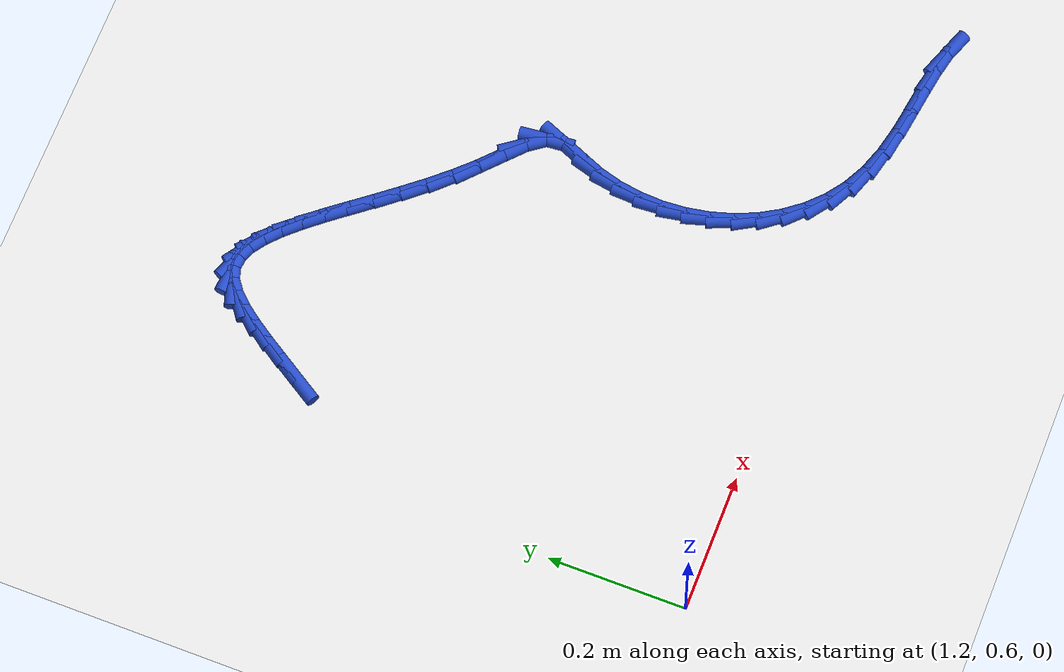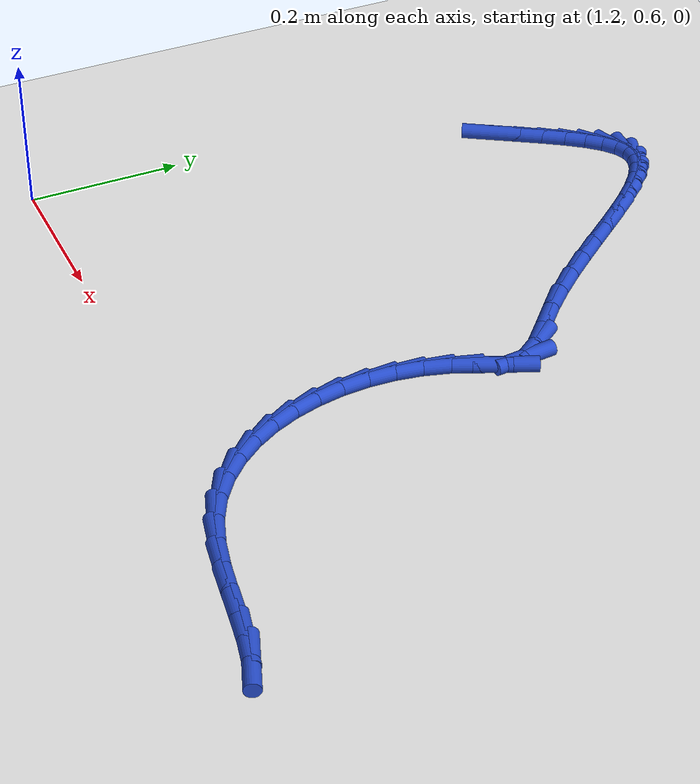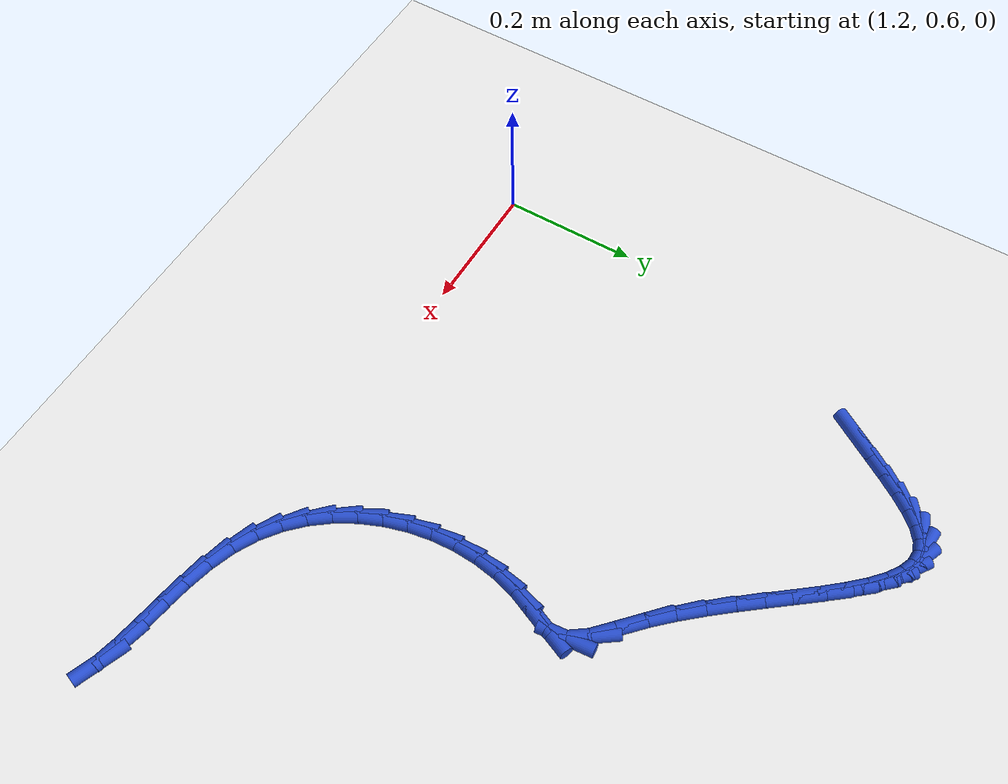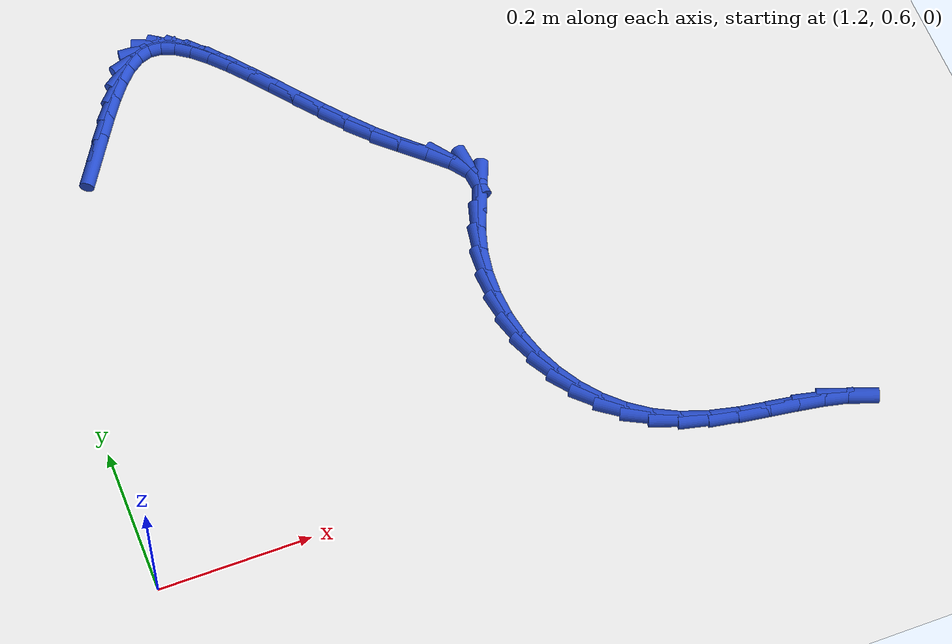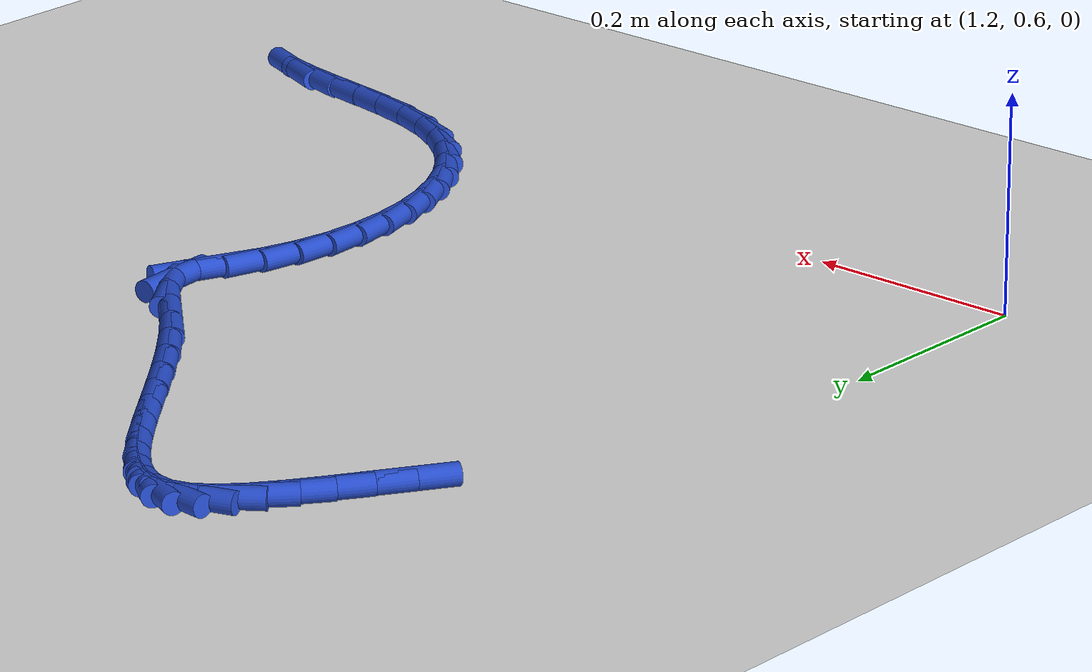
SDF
<sdf version="1.6">
 <world name="default">
  <model name="ground_plane">
   <static>1</static>
   <link name="link">
    <collision name="collision">
     <geometry><plane><normal>0 0 1</normal><size>100 100</size></plane></geometry>
     <surface><friction><ode><mu>100</mu><mu2>50</mu2></ode></friction></surface>
    </collision>
    <visual name="visual">
     <cast_shadows>0</cast_shadows>
     <geometry><plane><normal>0 0 1</normal><size>100 100</size></plane></geometry>
     <material>
      <script><uri>file://media/materials/scripts/gazebo.material</uri><name>Gazebo/WhiteGlow</name></script>
     </material>
    </visual>
   </link>
  </model>
  <model name="line">
   <link name="link_61">
    <pose>1.3156228348762282 1.217150952745425 0.01 0 1.57 1.0138825208584834</pose>
    <collision name="collision">
     <geometry><cylinder><radius>0.01</radius><length>0.08</length></cylinder></geometry>
    </collision>
    <visual name="visual">
     <material>
      <script><name>Gazebo/Blue</name><uri>file://media/materials/scripts/gazebo.material</uri></script>
     </material>
     <geometry><cylinder><radius>0.01</radius><length>0.08</length></cylinder></geometry>
    </visual>
   </link>
   <link name="link_62">
    <pose>1.3344318587654038 1.2473585581870004 0.01 0 1.57 1.0110584787990842</pose>
    <collision name="collision">
     <geometry><cylinder><radius>0.01</radius><length>0.08</length></cylinder></geometry>
    </collision>
    <visual name="visual">
     <material>
      <script><name>Gazebo/Blue</name><uri>file://media/materials/scripts/gazebo.material</uri></script>
     </material>
     <geometry><cylinder><radius>0.01</radius><length>0.08</length></cylinder></geometry>
    </visual>
   </link>
   <link name="link_63">
    <pose>1.3524198806023695 1.2760666170446617 0.01 0 1.57 0.9844993900886725</pose>
    <collision name="collision">
     <geometry><cylinder><radius>0.01</radius><length>0.08</length></cylinder></geometry>
    </collision>
    <visual name="visual">
     <material>
      <script><name>Gazebo/Blue</name><uri>file://media/materials/scripts/gazebo.material</uri></script>
     </material>
     <geometry><cylinder><radius>0.01</radius><length>0.08</length></cylinder></geometry>
    </visual>
   </link>
   <link name="link_64">
    <pose>1.3698177956399276 1.3022601809817511 0.01 0 1.57 0.9261493558185699</pose>
    <collision name="collision">
     <geometry><cylinder><radius>0.01</radius><length>0.08</length></cylinder></geometry>
    </collision>
    <visual name="visual">
     <material>
      <script><name>Gazebo/Blue</name><uri>file://media/materials/scripts/gazebo.material</uri></script>
     </material>
     <geometry><cylinder><radius>0.01</radius><length>0.08</length></cylinder></geometry>
    </visual>
   </link>
   <link name="link_65">
    <pose>1.3868564991308805 1.3249243016616115 0.01 0 1.57 0.8199073776465102</pose>
    <collision name="collision">
     <geometry><cylinder><radius>0.01</radius><length>0.08</length></cylinder></geometry>
    </collision>
    <visual name="visual">
     <material>
      <script><name>Gazebo/Blue</name><uri>file://media/materials/scripts/gazebo.material</uri></script>
     </material>
     <geometry><cylinder><radius>0.01</radius><length>0.08</length></cylinder></geometry>
    </visual>
   </link>
   <link name="link_66">
    <pose>1.4037668863280315 1.3430440307475857 0.01 0 1.57 0.635960166127817</pose>
    <collision name="collision">
     <geometry><cylinder><radius>0.01</radius><length>0.08</length></cylinder></geometry>
    </collision>
    <visual name="visual">
     <material>
      <script><name>Gazebo/Blue</name><uri>file://media/materials/scripts/gazebo.material</uri></script>
     </material>
     <geometry><cylinder><radius>0.01</radius><length>0.08</length></cylinder></geometry>
    </visual>
   </link>
   <link name="link_67">
    <pose>1.4207798524841826 1.355604419903016 0.01 0 1.57 0.3324213625353398</pose>
    <collision name="collision">
     <geometry><cylinder><radius>0.01</radius><length>0.08</length></cylinder></geometry>
    </collision>
    <visual name="visual">
     <material>
      <script><name>Gazebo/Blue</name><uri>file://media/materials/scripts/gazebo.material</uri></script>
     </material>
     <geometry><cylinder><radius>0.01</radius><length>0.08</length></cylinder></geometry>
    </visual>
   </link>
   <link name="link_68">
    <pose>1.4381260610375546 1.3615928959448065 0.01 0 1.57 -0.06072433947442068</pose>
    <collision name="collision">
     <geometry><cylinder><radius>0.01</radius><length>0.08</length></cylinder></geometry>
    </collision>
    <visual name="visual">
     <material>
      <script><name>Gazebo/Blue</name><uri>file://media/materials/scripts/gazebo.material</uri></script>
     </material>
     <geometry><cylinder><radius>0.01</radius><length>0.08</length></cylinder></geometry>
    </visual>
   </link>
   <link name="link_69">
    <pose>1.4559863879331725 1.3605070043410419 0.01 0 1.57 -0.38720722051322115</pose>
    <collision name="collision">
     <geometry><cylinder><radius>0.01</radius><length>0.08</length></cylinder></geometry>
    </collision>
    <visual name="visual">
     <material>
      <script><name>Gazebo/Blue</name><uri>file://media/materials/scripts/gazebo.material</uri></script>
     </material>
     <geometry><cylinder><radius>0.01</radius><length>0.08</length></cylinder></geometry>
    </visual>
   </link>
   <link name="link_70">
    <pose>1.4744303092977136 1.3529856841393764 0.01 0 1.57 -0.6038543244801239</pose>
    <collision name="collision">
     <geometry><cylinder><radius>0.01</radius><length>0.08</length></cylinder></geometry>
    </collision>
    <visual name="visual">
     <material>
      <script><name>Gazebo/Blue</name><uri>file://media/materials/scripts/gazebo.material</uri></script>
     </material>
     <geometry><cylinder><radius>0.01</radius><length>0.08</length></cylinder></geometry>
    </visual>
   </link>
   <link name="link_71">
    <pose>1.4935121788266774 1.3398228176011047 0.01 0 1.57 -0.738755962562868</pose>
    <collision name="collision">
     <geometry><cylinder><radius>0.01</radius><length>0.08</length></cylinder></geometry>
    </collision>
    <visual name="visual">
     <material>
      <script><name>Gazebo/Blue</name><uri>file://media/materials/scripts/gazebo.material</uri></script>
     </material>
     <geometry><cylinder><radius>0.01</radius><length>0.08</length></cylinder></geometry>
    </visual>
   </link>
   <link name="link_72">
    <pose>1.5132863502155636 1.3218122869875213 0.01 0 1.57 -0.8216270018435968</pose>
    <collision name="collision">
     <geometry><cylinder><radius>0.01</radius><length>0.08</length></cylinder></geometry>
    </collision>
    <visual name="visual">
     <material>
      <script><name>Gazebo/Blue</name><uri>file://media/materials/scripts/gazebo.material</uri></script>
     </material>
     <geometry><cylinder><radius>0.01</radius><length>0.08</length></cylinder></geometry>
    </visual>
   </link>
   <link name="link_73">
    <pose>1.5338071771598727 1.299747974559921 0.01 0 1.57 -0.8709916282372475</pose>
    <collision name="collision">
     <geometry><cylinder><radius>0.01</radius><length>0.08</length></cylinder></geometry>
    </collision>
    <visual name="visual">
     <material>
      <script><name>Gazebo/Blue</name><uri>file://media/materials/scripts/gazebo.material</uri></script>
     </material>
     <geometry><cylinder><radius>0.01</radius><length>0.08</length></cylinder></geometry>
    </visual>
   </link>
   <link name="link_74">
    <pose>1.555129013355104 1.2744237625795982 0.01 0 1.57 -0.8972629806093912</pose>
    <collision name="collision">
     <geometry><cylinder><radius>0.01</radius><length>0.08</length></cylinder></geometry>
    </collision>
    <visual name="visual">
     <material>
      <script><name>Gazebo/Blue</name><uri>file://media/materials/scripts/gazebo.material</uri></script>
     </material>
     <geometry><cylinder><radius>0.01</radius><length>0.08</length></cylinder></geometry>
    </visual>
   </link>
   <link name="link_75">
    <pose>1.5773062124967574 1.246633533307847 0.01 0 1.57 -0.9061313328251938</pose>
    <collision name="collision">
     <geometry><cylinder><radius>0.01</radius><length>0.08</length></cylinder></geometry>
    </collision>
    <visual name="visual">
     <material>
      <script><name>Gazebo/Blue</name><uri>file://media/materials/scripts/gazebo.material</uri></script>
     </material>
     <geometry><cylinder><radius>0.01</radius><length>0.08</length></cylinder></geometry>
    </visual>
   </link>
   <link name="link_76">
    <pose>1.6003931282803325 1.2171711690059634 0.01 0 1.57 -0.9005229073772185</pose>
    <collision name="collision">
     <geometry><cylinder><radius>0.01</radius><length>0.08</length></cylinder></geometry>
    </collision>
    <visual name="visual">
     <material>
      <script><name>Gazebo/Blue</name><uri>file://media/materials/scripts/gazebo.material</uri></script>
     </material>
     <geometry><cylinder><radius>0.01</radius><length>0.08</length></cylinder></geometry>
    </visual>
   </link>
   <link name="link_77">
    <pose>1.6244441144013293 1.1868305519352411 0.01 0 1.57 -0.8816068528451028</pose>
    <collision name="collision">
     <geometry><cylinder><radius>0.01</radius><length>0.08</length></cylinder></geometry>
    </collision>
    <visual name="visual">
     <material>
      <script><name>Gazebo/Blue</name><uri>file://media/materials/scripts/gazebo.material</uri></script>
     </material>
     <geometry><cylinder><radius>0.01</radius><length>0.08</length></cylinder></geometry>
    </visual>
   </link>
   <link name="link_78">
    <pose>1.649513524555248 1.1564055643569737 0.01 0 1.57 -0.849282423548744</pose>
    <collision name="collision">
     <geometry><cylinder><radius>0.01</radius><length>0.08</length></cylinder></geometry>
    </collision>
    <visual name="visual">
     <material>
      <script><name>Gazebo/Blue</name><uri>file://media/materials/scripts/gazebo.material</uri></script>
     </material>
     <geometry><cylinder><radius>0.01</radius><length>0.08</length></cylinder></geometry>
    </visual>
   </link>
   <link name="link_79">
    <pose>1.6756557124375875 1.1266900885324578 0.01 0 1.57 -0.8023889343880012</pose>
    <collision name="collision">
     <geometry><cylinder><radius>0.01</radius><length>0.08</length></cylinder></geometry>
    </collision>
    <visual name="visual">
     <material>
      <script><name>Gazebo/Blue</name><uri>file://media/materials/scripts/gazebo.material</uri></script>
     </material>
     <geometry><cylinder><radius>0.01</radius><length>0.08</length></cylinder></geometry>
    </visual>
   </link>
   <link name="link_80">
    <pose>1.7029250317438476 1.0984780067229867 0.01 0 1.57 -0.7421953878298723</pose>
    <collision name="collision">
     <geometry><cylinder><radius>0.01</radius><length>0.08</length></cylinder></geometry>
    </collision>
    <visual name="visual">
     <material>
      <script><name>Gazebo/Blue</name><uri>file://media/materials/scripts/gazebo.material</uri></script>
     </material>
     <geometry><cylinder><radius>0.01</radius><length>0.08</length></cylinder></geometry>
    </visual>
   </link>
   <link name="link_81">
    <pose>1.7312402578563826 1.0725094508465929 0.01 0 1.57 -0.7476946353396521</pose>
    <collision name="collision">
     <geometry><cylinder><radius>0.01</radius><length>0.08</length></cylinder></geometry>
    </collision>
    <visual name="visual">
     <material>
      <script><name>Gazebo/Blue</name><uri>file://media/materials/scripts/gazebo.material</uri></script>
     </material>
     <geometry><cylinder><radius>0.01</radius><length>0.08</length></cylinder></geometry>
    </visual>
   </link>
   <link name="link_82">
    <pose>1.7573727879879522 1.0482767672937572 0.01 0 1.57 -0.9442974525519335</pose>
    <collision name="collision">
     <geometry><cylinder><radius>0.01</radius><length>0.08</length></cylinder></geometry>
    </collision>
    <visual name="visual">
     <material>
      <script><name>Gazebo/Blue</name><uri>file://media/materials/scripts/gazebo.material</uri></script>
     </material>
     <geometry><cylinder><radius>0.01</radius><length>0.08</length></cylinder></geometry>
    </visual>
   </link>
   <link name="link_83">
    <pose>1.7749304020544534 1.0240180788869537 0.01 0 1.57 -1.475453861188558</pose>
    <collision name="collision">
     <geometry><cylinder><radius>0.01</radius><length>0.08</length></cylinder></geometry>
    </collision>
    <visual name="visual">
     <material>
      <script><name>Gazebo/Blue</name><uri>file://media/materials/scripts/gazebo.material</uri></script>
     </material>
     <geometry><cylinder><radius>0.01</radius><length>0.08</length></cylinder></geometry>
    </visual>
   </link>
   <link name="link_84">
    <pose>1.7774260743929389 0.9979215678066847 0.01 0 1.57 1.1733890089668138</pose>
    <collision name="collision">
     <geometry><cylinder><radius>0.01</radius><length>0.08</length></cylinder></geometry>
    </collision>
    <visual name="visual">
     <material>
      <script><name>Gazebo/Blue</name><uri>file://media/materials/scripts/gazebo.material</uri></script>
     </material>
     <geometry><cylinder><radius>0.01</radius><length>0.08</length></cylinder></geometry>
    </visual>
   </link>
   <link name="link_85">
    <pose>1.7652759288426474 0.9689747595665195 0.01 0 1.57 1.1680574374862887</pose>
    <collision name="collision">
     <geometry><cylinder><radius>0.01</radius><length>0.08</length></cylinder></geometry>
    </collision>
    <visual name="visual">
     <material>
      <script><name>Gazebo/Blue</name><uri>file://media/materials/scripts/gazebo.material</uri></script>
     </material>
     <geometry><cylinder><radius>0.01</radius><length>0.08</length></cylinder></geometry>
    </visual>
   </link>
   <link name="link_86">
    <pose>1.7519952303910495 0.9378012732072315 0.01 0 1.57 1.292122900048962</pose>
    <collision name="collision">
     <geometry><cylinder><radius>0.01</radius><length>0.08</length></cylinder></geometry>
    </collision>
    <visual name="visual">
     <material>
      <script><name>Gazebo/Blue</name><uri>file://media/materials/scripts/gazebo.material</uri></script>
     </material>
     <geometry><cylinder><radius>0.01</radius><length>0.08</length></cylinder></geometry>
    </visual>
   </link>
   <link name="link_87">
    <pose>1.7426160820845251 0.9050206429570194 0.01 0 1.57 1.4104398572533245</pose>
    <collision name="collision">
     <geometry><cylinder><radius>0.01</radius><length>0.08</length></cylinder></geometry>
    </collision>
    <visual name="visual">
     <material>
      <script><name>Gazebo/Blue</name><uri>file://media/materials/scripts/gazebo.material</uri></script>
     </material>
     <geometry><cylinder><radius>0.01</radius><length>0.08</length></cylinder></geometry>
    </visual>
   </link>
   <link name="link_88">
    <pose>1.737137489694992 0.871148903922887 0.01 0 1.57 1.5239893048946942</pose>
    <collision name="collision">
     <geometry><cylinder><radius>0.01</radius><length>0.08</length></cylinder></geometry>
    </collision>
    <visual name="visual">
     <material>
      <script><name>Gazebo/Blue</name><uri>file://media/materials/scripts/gazebo.material</uri></script>
     </material>
     <geometry><cylinder><radius>0.01</radius><length>0.08</length></cylinder></geometry>
    </visual>
   </link>
   <link name="link_89">
    <pose>1.7355239251814882 0.8367013810687424 0.01 0 1.57 -1.5066692217258437</pose>
    <collision name="collision">
     <geometry><cylinder><radius>0.01</radius><length>0.08</length></cylinder></geometry>
    </collision>
    <visual name="visual">
     <material>
      <script><name>Gazebo/Blue</name><uri>file://media/materials/scripts/gazebo.material</uri></script>
     </material>
     <geometry><cylinder><radius>0.01</radius><length>0.08</length></cylinder></geometry>
    </visual>
   </link>
   <link name="link_90">
    <pose>1.737739860503053 0.8021933993584937 0.01 0 1.57 -1.396108926476229</pose>
    <collision name="collision">
     <geometry><cylinder><radius>0.01</radius><length>0.08</length></cylinder></geometry>
    </collision>
    <visual name="visual">
     <material>
      <script><name>Gazebo/Blue</name><uri>file://media/materials/scripts/gazebo.material</uri></script>
     </material>
     <geometry><cylinder><radius>0.01</radius><length>0.08</length></cylinder></geometry>
    </visual>
   </link>
   <link name="link_91">
    <pose>1.7437497676187241 0.7681402837560484 0.01 0 1.57 -1.283685841615894</pose>
    <collision name="collision">
     <geometry><cylinder><radius>0.01</radius><length>0.08</length></cylinder></geometry>
    </collision>
    <visual name="visual">
     <material>
      <script><name>Gazebo/Blue</name><uri>file://media/materials/scripts/gazebo.material</uri></script>
     </material>
     <geometry><cylinder><radius>0.01</radius><length>0.08</length></cylinder></geometry>
    </visual>
   </link>
   <link name="link_92">
    <pose>1.7535181184875404 0.7350573592253151 0.01 0 1.57 -1.1672550146581226</pose>
    <collision name="collision">
     <geometry><cylinder><radius>0.01</radius><length>0.08</length></cylinder></geometry>
    </collision>
    <visual name="visual">
     <material>
      <script><name>Gazebo/Blue</name><uri>file://media/materials/scripts/gazebo.material</uri></script>
     </material>
     <geometry><cylinder><radius>0.01</radius><length>0.08</length></cylinder></geometry>
    </visual>
   </link>
   <link name="link_93">
    <pose>1.7670093850685407 0.7034599507302021 0.01 0 1.57 -1.044892891064549</pose>
    <collision name="collision">
     <geometry><cylinder><radius>0.01</radius><length>0.08</length></cylinder></geometry>
    </collision>
    <visual name="visual">
     <material>
      <script><name>Gazebo/Blue</name><uri>file://media/materials/scripts/gazebo.material</uri></script>
     </material>
     <geometry><cylinder><radius>0.01</radius><length>0.08</length></cylinder></geometry>
    </visual>
   </link>
   <link name="link_94">
    <pose>1.784188039320763 0.673863383234616 0.01 0 1.57 -0.9151137903089099</pose>
    <collision name="collision">
     <geometry><cylinder><radius>0.01</radius><length>0.08</length></cylinder></geometry>
    </collision>
    <visual name="visual">
     <material>
      <script><name>Gazebo/Blue</name><uri>file://media/materials/scripts/gazebo.material</uri></script>
     </material>
     <geometry><cylinder><radius>0.01</radius><length>0.08</length></cylinder></geometry>
    </visual>
   </link>
   <link name="link_95">
    <pose>1.805018553203246 0.6467829817024664 0.01 0 1.57 -0.7771927869195333</pose>
    <collision name="collision">
     <geometry><cylinder><radius>0.01</radius><length>0.08</length></cylinder></geometry>
    </collision>
    <visual name="visual">
     <material>
      <script><name>Gazebo/Blue</name><uri>file://media/materials/scripts/gazebo.material</uri></script>
     </material>
     <geometry><cylinder><radius>0.01</radius><length>0.08</length></cylinder></geometry>
    </visual>
   </link>
   <link name="link_96">
    <pose>1.829465398675028 0.6227340710976604 0.01 0 1.57 -0.6315525616508892</pose>
    <collision name="collision">
     <geometry><cylinder><radius>0.01</radius><length>0.08</length></cylinder></geometry>
    </collision>
    <visual name="visual">
     <material>
      <script><name>Gazebo/Blue</name><uri>file://media/materials/scripts/gazebo.material</uri></script>
     </material>
     <geometry><cylinder><radius>0.01</radius><length>0.08</length></cylinder></geometry>
    </visual>
   </link>
   <link name="link_97">
    <pose>1.8574930476951477 0.6022319763841063 0.01 0 1.57 -0.4800684487229563</pose>
    <collision name="collision">
     <geometry><cylinder><radius>0.01</radius><length>0.08</length></cylinder></geometry>
    </collision>
    <visual name="visual">
     <material>
      <script><name>Gazebo/Blue</name><uri>file://media/materials/scripts/gazebo.material</uri></script>
     </material>
     <geometry><cylinder><radius>0.01</radius><length>0.08</length></cylinder></geometry>
    </visual>
   </link>
   <link name="link_98">
    <pose>1.8890659722226437 0.5857920225257118 0.01 0 1.57 -0.3346942187212465</pose>
    <collision name="collision">
     <geometry><cylinder><radius>0.01</radius><length>0.08</length></cylinder></geometry>
    </collision>
    <visual name="visual">
     <material>
      <script><name>Gazebo/Blue</name><uri>file://media/materials/scripts/gazebo.material</uri></script>
     </material>
     <geometry><cylinder><radius>0.01</radius><length>0.08</length></cylinder></geometry>
    </visual>
   </link>
   <link name="link_99">
    <pose>1.9239306907740765 0.5736668295266224 0.01 0 1.57 -0.2311361797186625</pose>
    <collision name="collision">
     <geometry><cylinder><radius>0.01</radius><length>0.08</length></cylinder></geometry>
    </collision>
    <visual name="visual">
     <material>
      <script><name>Gazebo/Blue</name><uri>file://media/materials/scripts/gazebo.material</uri></script>
     </material>
     <geometry><cylinder><radius>0.01</radius><length>0.08</length></cylinder></geometry>
    </visual>
   </link>
   <link name="link_100">
    <pose>1.9608880712870167 0.5649692001232354 0.01 0 1.57 -0.17033501720855374</pose>
    <collision name="collision">
     <geometry><cylinder><radius>0.01</radius><length>0.08</length></cylinder></geometry>
    </collision>
    <visual name="visual">
     <material>
      <script><name>Gazebo/Blue</name><uri>file://media/materials/scripts/gazebo.material</uri></script>
     </material>
     <geometry><cylinder><radius>0.01</radius><length>0.08</length></cylinder></geometry>
    </visual>
   </link>
   <link name="link_101">
    <pose>1.998482572845723 0.5585028807841191 0.01 0 1.57 -0.14662495190943675</pose>
    <collision name="collision">
     <geometry><cylinder><radius>0.01</radius><length>0.08</length></cylinder></geometry>
    </collision>
    <visual name="visual">
     <material>
      <script><name>Gazebo/Blue</name><uri>file://media/materials/scripts/gazebo.material</uri></script>
     </material>
     <geometry><cylinder><radius>0.01</radius><length>0.08</length></cylinder></geometry>
    </visual>
   </link>
   <link name="link_102">
    <pose>2.035258649830614 0.5530716123081835 0.01 0 1.57 -0.1606932830596124</pose>
    <collision name="collision">
     <geometry><cylinder><radius>0.01</radius><length>0.08</length></cylinder></geometry>
    </collision>
    <visual name="visual">
     <material>
      <script><name>Gazebo/Blue</name><uri>file://media/materials/scripts/gazebo.material</uri></script>
     </material>
     <geometry><cylinder><radius>0.01</radius><length>0.08</length></cylinder></geometry>
    </visual>
   </link>
   <link name="link_103">
    <pose>2.0697607566221095 0.5474791354943385 0.01 0 1.57 -0.22212193590837115</pose>
    <collision name="collision">
     <geometry><cylinder><radius>0.01</radius><length>0.08</length></cylinder></geometry>
    </collision>
    <visual name="visual">
     <material>
      <script><name>Gazebo/Blue</name><uri>file://media/materials/scripts/gazebo.material</uri></script>
     </material>
     <geometry><cylinder><radius>0.01</radius><length>0.08</length></cylinder></geometry>
    </visual>
   </link>
   <link name="link_104">
    <pose>2.100533347600628 0.540529191141494 0.01 0 1.57 -0.3556266646549852</pose>
    <collision name="collision">
     <geometry><cylinder><radius>0.01</radius><length>0.08</length></cylinder></geometry>
    </collision>
    <visual name="visual">
     <material>
      <script><name>Gazebo/Blue</name><uri>file://media/materials/scripts/gazebo.material</uri></script>
     </material>
     <geometry><cylinder><radius>0.01</radius><length>0.08</length></cylinder></geometry>
    </visual>
   </link>
  </model>
 </world>
</sdf>
